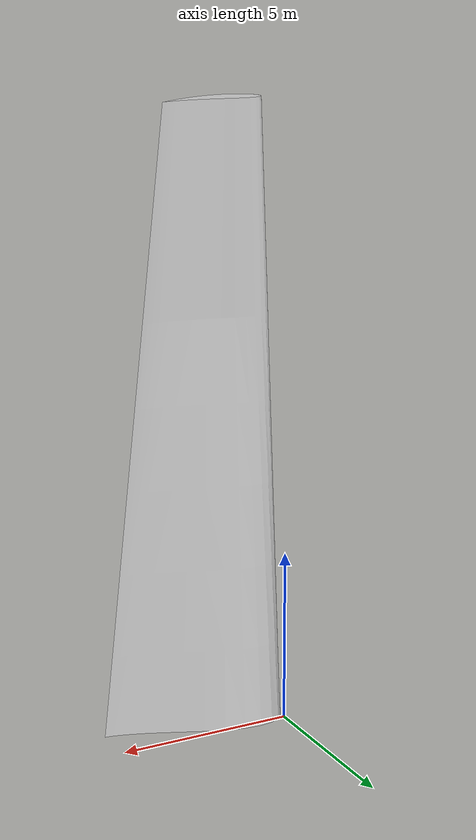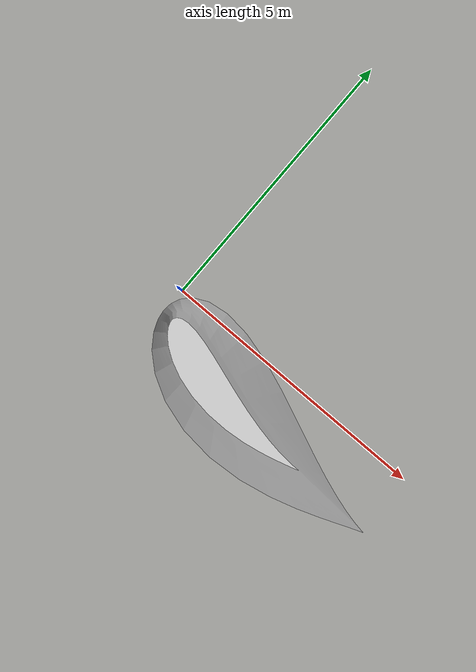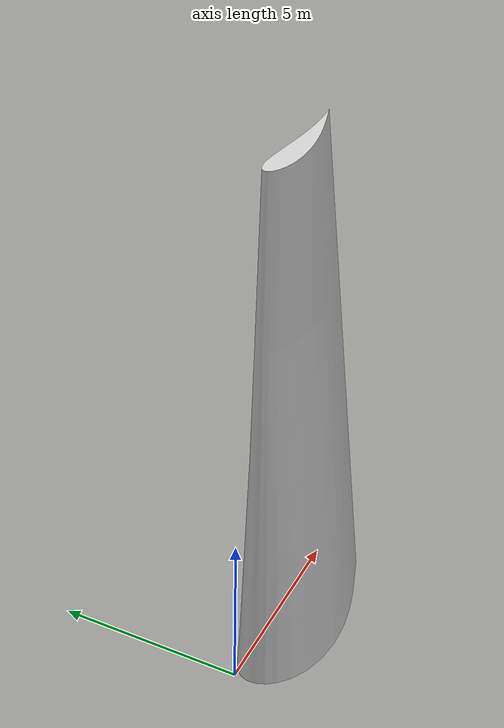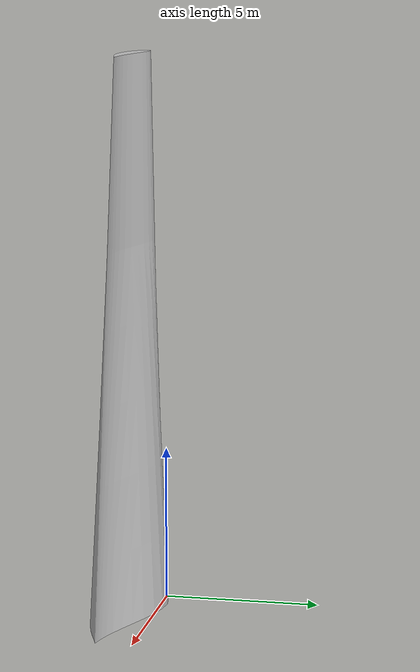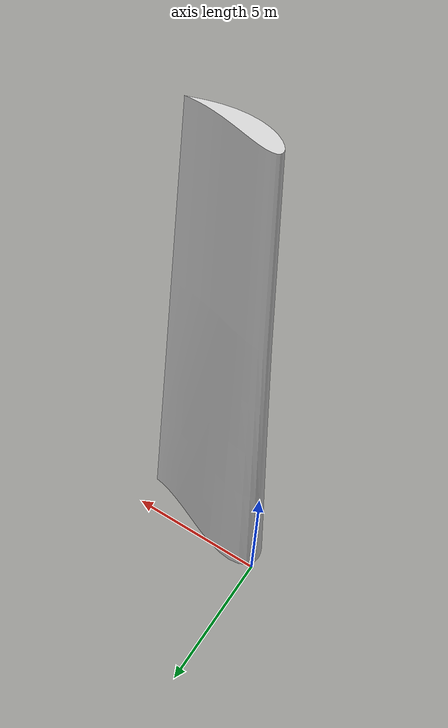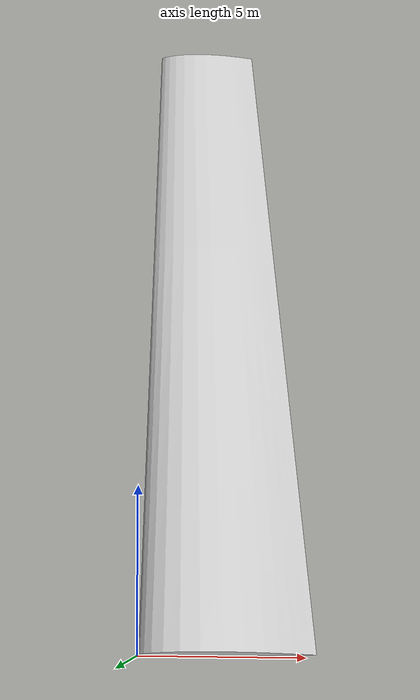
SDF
<?xml version='1.0'?>
<sdf version='1.9'>
  <model name='blade_tip'>
  <static>true</static>
    <link name='blade_link'>
      <collision name="blade_collision">
        <geometry>
          <mesh>
            <uri>model://blade_tip/meshes/blade_tip.stl</uri>
            <scale> 0.25 0.25 0.25 </scale>
          </mesh>
        </geometry>
      </collision>
      <visual name="blade_visual">
        <geometry>
          <mesh>
            <uri>model://blade_tip/meshes/blade_tip.stl</uri>
            <scale> 0.25 0.25 0.25 </scale>
          </mesh>
        </geometry>
        <material>
          <ambient>0.8 0.8 0.8 1</ambient>
          <diffuse>0.8 0.8 0.8 1</diffuse>
          <specular>1.0 1.0 1.0 1.0</specular>
        </material>
      </visual>
    </link>
  </model>
</sdf>
